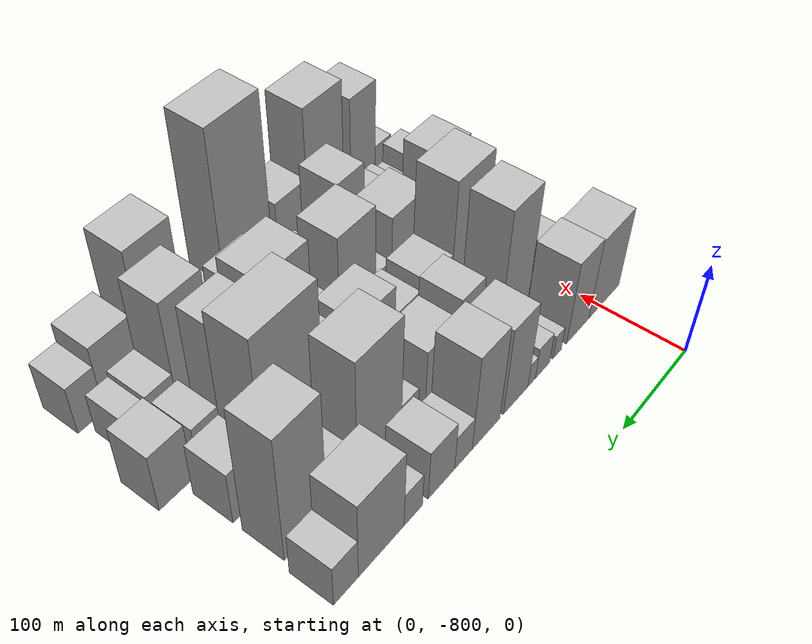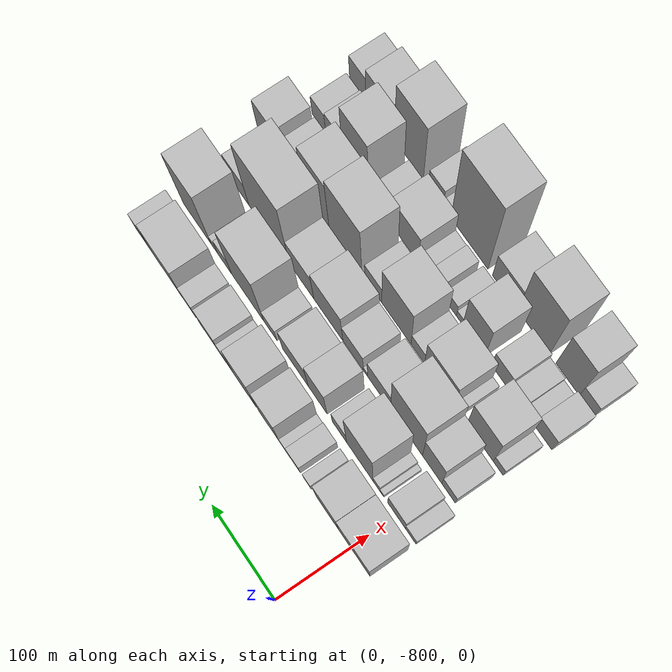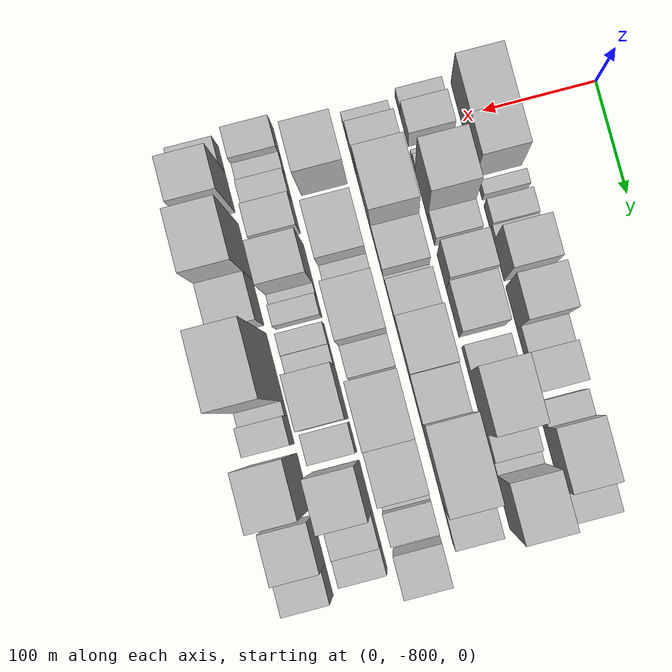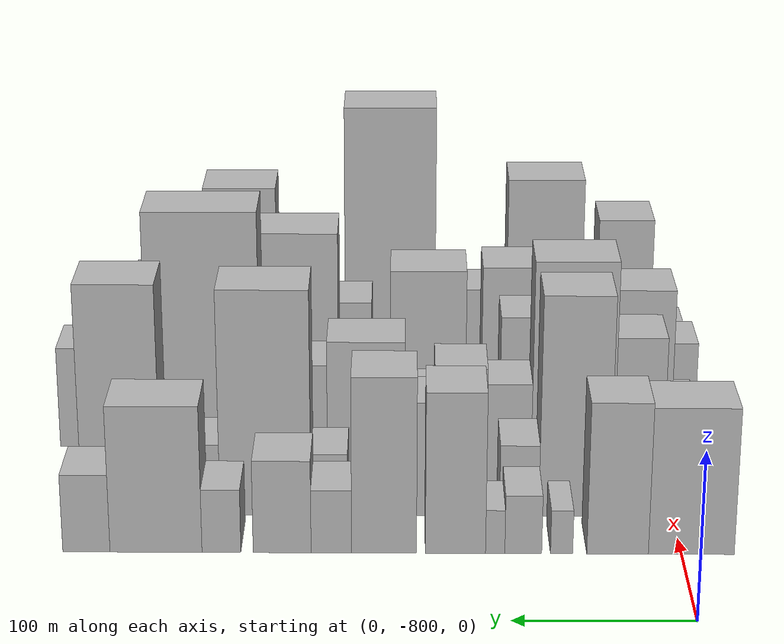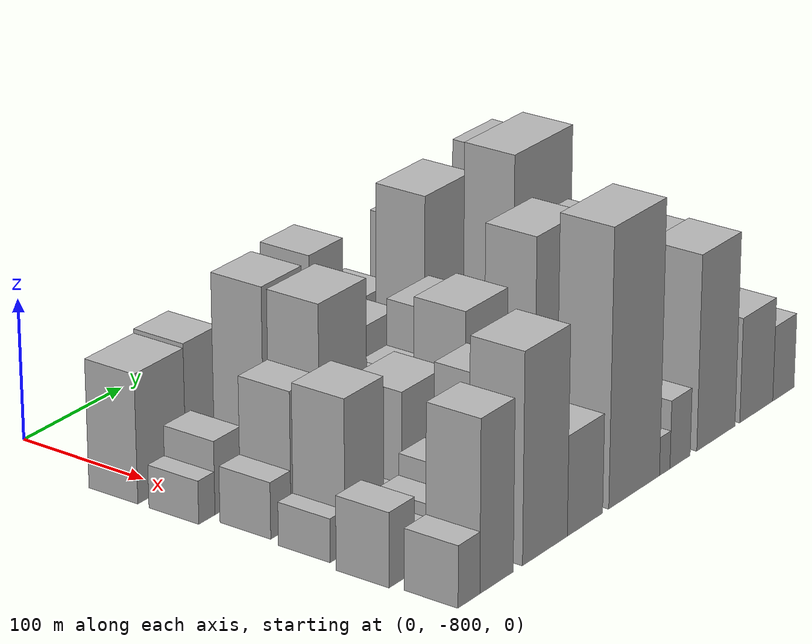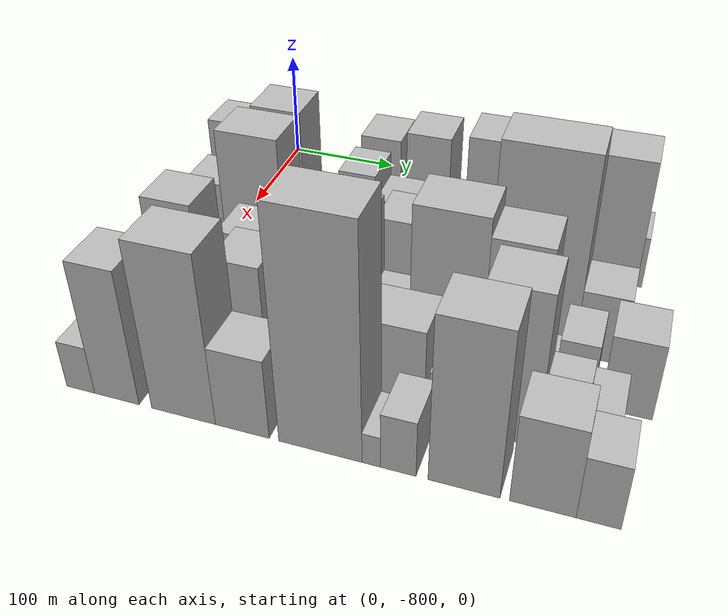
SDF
<sdf version="1.6">
 <world name="default">
  <model name="building_1">
   <static>1</static>
   <pose>100.0000 -805.6093 0 0.000000 0.000000 0.000000</pose>
   <link name="link">
    <pose>0 0 45.00 0 0 0</pose>
    <collision name="collision"><geometry><box><size>40.0000 48.7813 90.0000</size></box></geometry></collision>
    <visual name="visual">
     <cast_shadows>0</cast_shadows>
     <geometry><box><size>40.0000 48.7813 90.0000</size></box></geometry>
     <material>
      <script>
       <uri>model://HANNAS_wall/materials/scripts</uri>
       <uri>model://HANNAS_wall/materials/textures</uri>
       <name>vrc/HANNAS_wall</name>
      </script>
     </material>
    </visual>
   </link>
  </model>
  <model name="building_2">
   <static>1</static>
   <pose>100.0000 -763.7412 0 0.000000 0.000000 0.000000</pose>
   <link name="link">
    <pose>0 0 46.50 0 0 0</pose>
    <collision name="collision"><geometry><box><size>40.0000 34.9550 93.0000</size></box></geometry></collision>
    <visual name="visual">
     <cast_shadows>0</cast_shadows>
     <geometry><box><size>40.0000 34.9550 93.0000</size></box></geometry>
     <material>
      <script>
       <uri>model://HANNAS_wall/materials/scripts</uri>
       <uri>model://HANNAS_wall/materials/textures</uri>
       <name>vrc/HANNAS_wall</name>
      </script>
     </material>
    </visual>
   </link>
  </model>
  <model name="building_3">
   <static>1</static>
   <pose>100.0000 -731.9594 0 0.000000 0.000000 0.000000</pose>
   <link name="link">
    <pose>0 0 13.50 0 0 0</pose>
    <collision name="collision"><geometry><box><size>40.0000 12.6085 27.0000</size></box></geometry></collision>
    <visual name="visual">
     <cast_shadows>0</cast_shadows>
     <geometry><box><size>40.0000 12.6085 27.0000</size></box></geometry>
     <material>
      <script>
       <uri>model://HANNAS_wall/materials/scripts</uri>
       <uri>model://HANNAS_wall/materials/textures</uri>
       <name>vrc/HANNAS_wall</name>
      </script>
     </material>
    </visual>
   </link>
  </model>
  <model name="building_4">
   <static>1</static>
   <pose>100.0000 -710.1623 0 0.000000 0.000000 0.000000</pose>
   <link name="link">
    <pose>0 0 18.00 0 0 0</pose>
    <collision name="collision"><geometry><box><size>40.0000 20.9856 36.0000</size></box></geometry></collision>
    <visual name="visual">
     <cast_shadows>0</cast_shadows>
     <geometry><box><size>40.0000 20.9856 36.0000</size></box></geometry>
     <material>
      <script>
       <uri>model://HANNAS_wall/materials/scripts</uri>
       <uri>model://HANNAS_wall/materials/textures</uri>
       <name>vrc/HANNAS_wall</name>
      </script>
     </material>
    </visual>
   </link>
  </model>
  <model name="building_5">
   <static>1</static>
   <pose>100.0000 -694.1890 0 0.000000 0.000000 0.000000</pose>
   <link name="link">
    <pose>0 0 13.50 0 0 0</pose>
    <collision name="collision"><geometry><box><size>40.0000 10.9612 27.0000</size></box></geometry></collision>
    <visual name="visual">
     <cast_shadows>0</cast_shadows>
     <geometry><box><size>40.0000 10.9612 27.0000</size></box></geometry>
     <material>
      <script>
       <uri>model://HANNAS_wall/materials/scripts</uri>
       <uri>model://HANNAS_wall/materials/textures</uri>
       <name>vrc/HANNAS_wall</name>
      </script>
     </material>
    </visual>
   </link>
  </model>
  <model name="building_6">
   <static>1</static>
   <pose>100.0000 -671.6011 0 0.000000 0.000000 0.000000</pose>
   <link name="link">
    <pose>0 0 49.50 0 0 0</pose>
    <collision name="collision"><geometry><box><size>40.0000 34.2147 99.0000</size></box></geometry></collision>
    <visual name="visual">
     <cast_shadows>0</cast_shadows>
     <geometry><box><size>40.0000 34.2147 99.0000</size></box></geometry>
     <material>
      <script>
       <uri>model://HANNAS_wall/materials/scripts</uri>
       <uri>model://HANNAS_wall/materials/textures</uri>
       <name>vrc/HANNAS_wall</name>
      </script>
     </material>
    </visual>
   </link>
  </model>
  <model name="building_7">
   <static>1</static>
   <pose>100.0000 -631.0095 0 0.000000 0.000000 0.000000</pose>
   <link name="link">
    <pose>0 0 54.00 0 0 0</pose>
    <collision name="collision"><geometry><box><size>40.0000 36.9685 108.0000</size></box></geometry></collision>
    <visual name="visual">
     <cast_shadows>0</cast_shadows>
     <geometry><box><size>40.0000 36.9685 108.0000</size></box></geometry>
     <material>
      <script>
       <uri>model://HANNAS_wall/materials/scripts</uri>
       <uri>model://HANNAS_wall/materials/textures</uri>
       <name>vrc/HANNAS_wall</name>
      </script>
     </material>
    </visual>
   </link>
  </model>
  <model name="building_8">
   <static>1</static>
   <pose>100.0000 -601.0338 0 0.000000 0.000000 0.000000</pose>
   <link name="link">
    <pose>0 0 19.50 0 0 0</pose>
    <collision name="collision"><geometry><box><size>40.0000 22.9829 39.0000</size></box></geometry></collision>
    <visual name="visual">
     <cast_shadows>0</cast_shadows>
     <geometry><box><size>40.0000 22.9829 39.0000</size></box></geometry>
     <material>
      <script>
       <uri>model://HANNAS_wall/materials/scripts</uri>
       <uri>model://HANNAS_wall/materials/textures</uri>
       <name>vrc/HANNAS_wall</name>
      </script>
     </material>
    </visual>
   </link>
  </model>
  <model name="building_9">
   <static>1</static>
   <pose>100.0000 -573.0449 0 0.000000 0.000000 0.000000</pose>
   <link name="link">
    <pose>0 0 28.50 0 0 0</pose>
    <collision name="collision"><geometry><box><size>40.0000 32.9949 57.0000</size></box></geometry></collision>
    <visual name="visual">
     <cast_shadows>0</cast_shadows>
     <geometry><box><size>40.0000 32.9949 57.0000</size></box></geometry>
     <material>
      <script>
       <uri>model://HANNAS_wall/materials/scripts</uri>
       <uri>model://HANNAS_wall/materials/textures</uri>
       <name>vrc/HANNAS_wall</name>
      </script>
     </material>
    </visual>
   </link>
  </model>
  <model name="building_10">
   <static>1</static>
   <pose>100.0000 -538.4916 0 0.000000 0.000000 0.000000</pose>
   <link name="link">
    <pose>0 0 19.50 0 0 0</pose>
    <collision name="collision"><geometry><box><size>40.0000 22.1117 39.0000</size></box></geometry></collision>
    <visual name="visual">
     <cast_shadows>0</cast_shadows>
     <geometry><box><size>40.0000 22.1117 39.0000</size></box></geometry>
     <material>
      <script>
       <uri>model://HANNAS_wall/materials/scripts</uri>
       <uri>model://HANNAS_wall/materials/textures</uri>
       <name>vrc/HANNAS_wall</name>
      </script>
     </material>
    </visual>
   </link>
  </model>
  <model name="building_11">
   <static>1</static>
   <pose>100.0000 -501.2214 0 0.000000 0.000000 0.000000</pose>
   <link name="link">
    <pose>0 0 45.00 0 0 0</pose>
    <collision name="collision"><geometry><box><size>40.0000 52.4288 90.0000</size></box></geometry></collision>
    <visual name="visual">
     <cast_shadows>0</cast_shadows>
     <geometry><box><size>40.0000 52.4288 90.0000</size></box></geometry>
     <material>
      <script>
       <uri>model://HANNAS_wall/materials/scripts</uri>
       <uri>model://HANNAS_wall/materials/textures</uri>
       <name>vrc/HANNAS_wall</name>
      </script>
     </material>
    </visual>
   </link>
  </model>
  <model name="building_12">
   <static>1</static>
   <pose>100.0000 -461.5591 0 0.000000 0.000000 0.000000</pose>
   <link name="link">
    <pose>0 0 24.00 0 0 0</pose>
    <collision name="collision"><geometry><box><size>40.0000 26.8958 48.0000</size></box></geometry></collision>
    <visual name="visual">
     <cast_shadows>0</cast_shadows>
     <geometry><box><size>40.0000 26.8958 48.0000</size></box></geometry>
     <material>
      <script>
       <uri>model://HANNAS_wall/materials/scripts</uri>
       <uri>model://HANNAS_wall/materials/textures</uri>
       <name>vrc/HANNAS_wall</name>
      </script>
     </material>
    </visual>
   </link>
  </model>
  <model name="building_49">
   <static>1</static>
   <pose>149.0000 -821.7969 0 0.000000 0.000000 0.000000</pose>
   <link name="link">
    <pose>0 0 15.00 0 0 0</pose>
    <collision name="collision"><geometry><box><size>40.0000 16.4061 30.0000</size></box></geometry></collision>
    <visual name="visual">
     <cast_shadows>0</cast_shadows>
     <geometry><box><size>40.0000 16.4061 30.0000</size></box></geometry>
     <material>
      <script>
       <uri>model://HANNAS_wall/materials/scripts</uri>
       <uri>model://HANNAS_wall/materials/textures</uri>
       <name>vrc/HANNAS_wall</name>
      </script>
     </material>
    </visual>
   </link>
  </model>
  <model name="building_50">
   <static>1</static>
   <pose>149.0000 -799.8509 0 0.000000 0.000000 0.000000</pose>
   <link name="link">
    <pose>0 0 25.50 0 0 0</pose>
    <collision name="collision"><geometry><box><size>40.0000 27.4859 51.0000</size></box></geometry></collision>
    <visual name="visual">
     <cast_shadows>0</cast_shadows>
     <geometry><box><size>40.0000 27.4859 51.0000</size></box></geometry>
     <material>
      <script>
       <uri>model://HANNAS_wall/materials/scripts</uri>
       <uri>model://HANNAS_wall/materials/textures</uri>
       <name>vrc/HANNAS_wall</name>
      </script>
     </material>
    </visual>
   </link>
  </model>
  <model name="building_51">
   <static>1</static>
   <pose>149.0000 -776.9846 0 0.000000 0.000000 0.000000</pose>
   <link name="link">
    <pose>0 0 7.50 0 0 0</pose>
    <collision name="collision"><geometry><box><size>40.0000 6.2467 15.0000</size></box></geometry></collision>
    <visual name="visual">
     <cast_shadows>0</cast_shadows>
     <geometry><box><size>40.0000 6.2467 15.0000</size></box></geometry>
     <material>
      <script>
       <uri>model://HANNAS_wall/materials/scripts</uri>
       <uri>model://HANNAS_wall/materials/textures</uri>
       <name>vrc/HANNAS_wall</name>
      </script>
     </material>
    </visual>
   </link>
  </model>
  <model name="building_52">
   <static>1</static>
   <pose>149.0000 -768.4472 0 0.000000 0.000000 0.000000</pose>
   <link name="link">
    <pose>0 0 13.50 0 0 0</pose>
    <collision name="collision"><geometry><box><size>40.0000 10.8280 27.0000</size></box></geometry></collision>
    <visual name="visual">
     <cast_shadows>0</cast_shadows>
     <geometry><box><size>40.0000 10.8280 27.0000</size></box></geometry>
     <material>
      <script>
       <uri>model://HANNAS_wall/materials/scripts</uri>
       <uri>model://HANNAS_wall/materials/textures</uri>
       <name>vrc/HANNAS_wall</name>
      </script>
     </material>
    </visual>
   </link>
  </model>
  <model name="building_53">
   <static>1</static>
   <pose>149.0000 -742.2719 0 0.000000 0.000000 0.000000</pose>
   <link name="link">
    <pose>0 0 69.00 0 0 0</pose>
    <collision name="collision"><geometry><box><size>40.0000 41.5226 138.0000</size></box></geometry></collision>
    <visual name="visual">
     <cast_shadows>0</cast_shadows>
     <geometry><box><size>40.0000 41.5226 138.0000</size></box></geometry>
     <material>
      <script>
       <uri>model://HANNAS_wall/materials/scripts</uri>
       <uri>model://HANNAS_wall/materials/textures</uri>
       <name>vrc/HANNAS_wall</name>
      </script>
     </material>
    </visual>
   </link>
  </model>
  <model name="building_54">
   <static>1</static>
   <pose>149.0000 -709.9902 0 0.000000 0.000000 0.000000</pose>
   <link name="link">
    <pose>0 0 22.50 0 0 0</pose>
    <collision name="collision"><geometry><box><size>40.0000 23.0407 45.0000</size></box></geometry></collision>
    <visual name="visual">
     <cast_shadows>0</cast_shadows>
     <geometry><box><size>40.0000 23.0407 45.0000</size></box></geometry>
     <material>
      <script>
       <uri>model://HANNAS_wall/materials/scripts</uri>
       <uri>model://HANNAS_wall/materials/textures</uri>
       <name>vrc/HANNAS_wall</name>
      </script>
     </material>
    </visual>
   </link>
  </model>
  <model name="building_55">
   <static>1</static>
   <pose>149.0000 -675.2562 0 0.000000 0.000000 0.000000</pose>
   <link name="link">
    <pose>0 0 46.50 0 0 0</pose>
    <collision name="collision"><geometry><box><size>40.0000 30.4271 93.0000</size></box></geometry></collision>
    <visual name="visual">
     <cast_shadows>0</cast_shadows>
     <geometry><box><size>40.0000 30.4271 93.0000</size></box></geometry>
     <material>
      <script>
       <uri>model://HANNAS_wall/materials/scripts</uri>
       <uri>model://HANNAS_wall/materials/textures</uri>
       <name>vrc/HANNAS_wall</name>
      </script>
     </material>
    </visual>
   </link>
  </model>
  <model name="building_56">
   <static>1</static>
   <pose>149.0000 -639.1343 0 0.000000 0.000000 0.000000</pose>
   <link name="link">
    <pose>0 0 36.00 0 0 0</pose>
    <collision name="collision"><geometry><box><size>40.0000 41.8168 72.0000</size></box></geometry></collision>
    <visual name="visual">
     <cast_shadows>0</cast_shadows>
     <geometry><box><size>40.0000 41.8168 72.0000</size></box></geometry>
     <material>
      <script>
       <uri>model://HANNAS_wall/materials/scripts</uri>
       <uri>model://HANNAS_wall/materials/textures</uri>
       <name>vrc/HANNAS_wall</name>
      </script>
     </material>
    </visual>
   </link>
  </model>
  <model name="building_57">
   <static>1</static>
   <pose>149.0000 -598.4650 0 0.000000 0.000000 0.000000</pose>
   <link name="link">
    <pose>0 0 19.50 0 0 0</pose>
    <collision name="collision"><geometry><box><size>40.0000 21.5218 39.0000</size></box></geometry></collision>
    <visual name="visual">
     <cast_shadows>0</cast_shadows>
     <geometry><box><size>40.0000 21.5218 39.0000</size></box></geometry>
     <material>
      <script>
       <uri>model://HANNAS_wall/materials/scripts</uri>
       <uri>model://HANNAS_wall/materials/textures</uri>
       <name>vrc/HANNAS_wall</name>
      </script>
     </material>
    </visual>
   </link>
  </model>
  <model name="building_58">
   <static>1</static>
   <pose>149.0000 -560.9522 0 0.000000 0.000000 0.000000</pose>
   <link name="link">
    <pose>0 0 70.50 0 0 0</pose>
    <collision name="collision"><geometry><box><size>40.0000 53.5037 141.0000</size></box></geometry></collision>
    <visual name="visual">
     <cast_shadows>0</cast_shadows>
     <geometry><box><size>40.0000 53.5037 141.0000</size></box></geometry>
     <material>
      <script>
       <uri>model://HANNAS_wall/materials/scripts</uri>
       <uri>model://HANNAS_wall/materials/textures</uri>
       <name>vrc/HANNAS_wall</name>
      </script>
     </material>
    </visual>
   </link>
  </model>
  <model name="building_59">
   <static>1</static>
   <pose>149.0000 -522.5484 0 0.000000 0.000000 0.000000</pose>
   <link name="link">
    <pose>0 0 22.50 0 0 0</pose>
    <collision name="collision"><geometry><box><size>40.0000 23.3039 45.0000</size></box></geometry></collision>
    <visual name="visual">
     <cast_shadows>0</cast_shadows>
     <geometry><box><size>40.0000 23.3039 45.0000</size></box></geometry>
     <material>
      <script>
       <uri>model://HANNAS_wall/materials/scripts</uri>
       <uri>model://HANNAS_wall/materials/textures</uri>
       <name>vrc/HANNAS_wall</name>
      </script>
     </material>
    </visual>
   </link>
  </model>
  <model name="building_60">
   <static>1</static>
   <pose>149.0000 -505.3065 0 0.000000 0.000000 0.000000</pose>
   <link name="link">
    <pose>0 0 13.50 0 0 0</pose>
    <collision name="collision"><geometry><box><size>40.0000 11.1798 27.0000</size></box></geometry></collision>
    <visual name="visual">
     <cast_shadows>0</cast_shadows>
     <geometry><box><size>40.0000 11.1798 27.0000</size></box></geometry>
     <material>
      <script>
       <uri>model://HANNAS_wall/materials/scripts</uri>
       <uri>model://HANNAS_wall/materials/textures</uri>
       <name>vrc/HANNAS_wall</name>
      </script>
     </material>
    </visual>
   </link>
  </model>
  <model name="building_61">
   <static>1</static>
   <pose>149.0000 -476.3643 0 0.000000 0.000000 0.000000</pose>
   <link name="link">
    <pose>0 0 72.00 0 0 0</pose>
    <collision name="collision"><geometry><box><size>40.0000 46.7046 144.0000</size></box></geometry></collision>
    <visual name="visual">
     <cast_shadows>0</cast_shadows>
     <geometry><box><size>40.0000 46.7046 144.0000</size></box></geometry>
     <material>
      <script>
       <uri>model://HANNAS_wall/materials/scripts</uri>
       <uri>model://HANNAS_wall/materials/textures</uri>
       <name>vrc/HANNAS_wall</name>
      </script>
     </material>
    </visual>
   </link>
  </model>
  <model name="building_98">
   <static>1</static>
   <pose>198.0000 -809.5957 0 0.000000 0.000000 0.000000</pose>
   <link name="link">
    <pose>0 0 19.50 0 0 0</pose>
    <collision name="collision"><geometry><box><size>40.0000 20.8086 39.0000</size></box></geometry></collision>
    <visual name="visual">
     <cast_shadows>0</cast_shadows>
     <geometry><box><size>40.0000 20.8086 39.0000</size></box></geometry>
     <material>
      <script>
       <uri>model://HANNAS_wall/materials/scripts</uri>
       <uri>model://HANNAS_wall/materials/textures</uri>
       <name>vrc/HANNAS_wall</name>
      </script>
     </material>
    </visual>
   </link>
  </model>
  <model name="building_99">
   <static>1</static>
   <pose>198.0000 -784.1689 0 0.000000 0.000000 0.000000</pose>
   <link name="link">
    <pose>0 0 46.50 0 0 0</pose>
    <collision name="collision"><geometry><box><size>40.0000 30.0450 93.0000</size></box></geometry></collision>
    <visual name="visual">
     <cast_shadows>0</cast_shadows>
     <geometry><box><size>40.0000 30.0450 93.0000</size></box></geometry>
     <material>
      <script>
       <uri>model://HANNAS_wall/materials/scripts</uri>
       <uri>model://HANNAS_wall/materials/textures</uri>
       <name>vrc/HANNAS_wall</name>
      </script>
     </material>
    </visual>
   </link>
  </model>
  <model name="building_100">
   <static>1</static>
   <pose>198.0000 -744.1848 0 0.000000 0.000000 0.000000</pose>
   <link name="link">
    <pose>0 0 70.50 0 0 0</pose>
    <collision name="collision"><geometry><box><size>40.0000 49.9233 141.0000</size></box></geometry></collision>
    <visual name="visual">
     <cast_shadows>0</cast_shadows>
     <geometry><box><size>40.0000 49.9233 141.0000</size></box></geometry>
     <material>
      <script>
       <uri>model://HANNAS_wall/materials/scripts</uri>
       <uri>model://HANNAS_wall/materials/textures</uri>
       <name>vrc/HANNAS_wall</name>
      </script>
     </material>
    </visual>
   </link>
  </model>
  <model name="building_101">
   <static>1</static>
   <pose>198.0000 -700.9851 0 0.000000 0.000000 0.000000</pose>
   <link name="link">
    <pose>0 0 31.50 0 0 0</pose>
    <collision name="collision"><geometry><box><size>40.0000 36.4761 63.0000</size></box></geometry></collision>
    <visual name="visual">
     <cast_shadows>0</cast_shadows>
     <geometry><box><size>40.0000 36.4761 63.0000</size></box></geometry>
     <material>
      <script>
       <uri>model://HANNAS_wall/materials/scripts</uri>
       <uri>model://HANNAS_wall/materials/textures</uri>
       <name>vrc/HANNAS_wall</name>
      </script>
     </material>
    </visual>
   </link>
  </model>
  <model name="building_102">
   <static>1</static>
   <pose>198.0000 -679.3161 0 0.000000 0.000000 0.000000</pose>
   <link name="link">
    <pose>0 0 7.50 0 0 0</pose>
    <collision name="collision"><geometry><box><size>40.0000 6.8618 15.0000</size></box></geometry></collision>
    <visual name="visual">
     <cast_shadows>0</cast_shadows>
     <geometry><box><size>40.0000 6.8618 15.0000</size></box></geometry>
     <material>
      <script>
       <uri>model://HANNAS_wall/materials/scripts</uri>
       <uri>model://HANNAS_wall/materials/textures</uri>
       <name>vrc/HANNAS_wall</name>
      </script>
     </material>
    </visual>
   </link>
  </model>
  <model name="building_103">
   <static>1</static>
   <pose>198.0000 -659.4198 0 0.000000 0.000000 0.000000</pose>
   <link name="link">
    <pose>0 0 28.50 0 0 0</pose>
    <collision name="collision"><geometry><box><size>40.0000 32.9308 57.0000</size></box></geometry></collision>
    <visual name="visual">
     <cast_shadows>0</cast_shadows>
     <geometry><box><size>40.0000 32.9308 57.0000</size></box></geometry>
     <material>
      <script>
       <uri>model://HANNAS_wall/materials/scripts</uri>
       <uri>model://HANNAS_wall/materials/textures</uri>
       <name>vrc/HANNAS_wall</name>
      </script>
     </material>
    </visual>
   </link>
  </model>
  <model name="building_104">
   <static>1</static>
   <pose>198.0000 -619.4637 0 0.000000 0.000000 0.000000</pose>
   <link name="link">
    <pose>0 0 45.00 0 0 0</pose>
    <collision name="collision"><geometry><box><size>40.0000 46.9815 90.0000</size></box></geometry></collision>
    <visual name="visual">
     <cast_shadows>0</cast_shadows>
     <geometry><box><size>40.0000 46.9815 90.0000</size></box></geometry>
     <material>
      <script>
       <uri>model://HANNAS_wall/materials/scripts</uri>
       <uri>model://HANNAS_wall/materials/textures</uri>
       <name>vrc/HANNAS_wall</name>
      </script>
     </material>
    </visual>
   </link>
  </model>
  <model name="building_105">
   <static>1</static>
   <pose>198.0000 -575.8763 0 0.000000 0.000000 0.000000</pose>
   <link name="link">
    <pose>0 0 37.50 0 0 0</pose>
    <collision name="collision"><geometry><box><size>40.0000 40.1931 75.0000</size></box></geometry></collision>
    <visual name="visual">
     <cast_shadows>0</cast_shadows>
     <geometry><box><size>40.0000 40.1931 75.0000</size></box></geometry>
     <material>
      <script>
       <uri>model://HANNAS_wall/materials/scripts</uri>
       <uri>model://HANNAS_wall/materials/textures</uri>
       <name>vrc/HANNAS_wall</name>
      </script>
     </material>
    </visual>
   </link>
  </model>
  <model name="building_106">
   <static>1</static>
   <pose>198.0000 -521.8946 0 0.000000 0.000000 0.000000</pose>
   <link name="link">
    <pose>0 0 85.50 0 0 0</pose>
    <collision name="collision"><geometry><box><size>40.0000 67.7703 171.0000</size></box></geometry></collision>
    <visual name="visual">
     <cast_shadows>0</cast_shadows>
     <geometry><box><size>40.0000 67.7703 171.0000</size></box></geometry>
     <material>
      <script>
       <uri>model://HANNAS_wall/materials/scripts</uri>
       <uri>model://HANNAS_wall/materials/textures</uri>
       <name>vrc/HANNAS_wall</name>
      </script>
     </material>
    </visual>
   </link>
  </model>
  <model name="building_107">
   <static>1</static>
   <pose>198.0000 -470.4962 0 0.000000 0.000000 0.000000</pose>
   <link name="link">
    <pose>0 0 30.00 0 0 0</pose>
    <collision name="collision"><geometry><box><size>40.0000 35.0267 60.0000</size></box></geometry></collision>
    <visual name="visual">
     <cast_shadows>0</cast_shadows>
     <geometry><box><size>40.0000 35.0267 60.0000</size></box></geometry>
     <material>
      <script>
       <uri>model://HANNAS_wall/materials/scripts</uri>
       <uri>model://HANNAS_wall/materials/textures</uri>
       <name>vrc/HANNAS_wall</name>
      </script>
     </material>
    </visual>
   </link>
  </model>
  <model name="building_143">
   <static>1</static>
   <pose>247.0000 -816.3912 0 0.000000 0.000000 0.000000</pose>
   <link name="link">
    <pose>0 0 15.00 0 0 0</pose>
    <collision name="collision"><geometry><box><size>40.0000 15.2175 30.0000</size></box></geometry></collision>
    <visual name="visual">
     <cast_shadows>0</cast_shadows>
     <geometry><box><size>40.0000 15.2175 30.0000</size></box></geometry>
     <material>
      <script>
       <uri>model://HANNAS_wall/materials/scripts</uri>
       <uri>model://HANNAS_wall/materials/textures</uri>
       <name>vrc/HANNAS_wall</name>
      </script>
     </material>
    </visual>
   </link>
  </model>
  <model name="building_144">
   <static>1</static>
   <pose>247.0000 -788.5164 0 0.000000 0.000000 0.000000</pose>
   <link name="link">
    <pose>0 0 52.50 0 0 0</pose>
    <collision name="collision"><geometry><box><size>40.0000 40.5322 105.0000</size></box></geometry></collision>
    <visual name="visual">
     <cast_shadows>0</cast_shadows>
     <geometry><box><size>40.0000 40.5322 105.0000</size></box></geometry>
     <material>
      <script>
       <uri>model://HANNAS_wall/materials/scripts</uri>
       <uri>model://HANNAS_wall/materials/textures</uri>
       <name>vrc/HANNAS_wall</name>
      </script>
     </material>
    </visual>
   </link>
  </model>
  <model name="building_145">
   <static>1</static>
   <pose>247.0000 -754.1603 0 0.000000 0.000000 0.000000</pose>
   <link name="link">
    <pose>0 0 12.00 0 0 0</pose>
    <collision name="collision"><geometry><box><size>40.0000 10.1801 24.0000</size></box></geometry></collision>
    <visual name="visual">
     <cast_shadows>0</cast_shadows>
     <geometry><box><size>40.0000 10.1801 24.0000</size></box></geometry>
     <material>
      <script>
       <uri>model://HANNAS_wall/materials/scripts</uri>
       <uri>model://HANNAS_wall/materials/textures</uri>
       <name>vrc/HANNAS_wall</name>
      </script>
     </material>
    </visual>
   </link>
  </model>
  <model name="building_146">
   <static>1</static>
   <pose>247.0000 -725.5037 0 0.000000 0.000000 0.000000</pose>
   <link name="link">
    <pose>0 0 43.50 0 0 0</pose>
    <collision name="collision"><geometry><box><size>40.0000 47.1330 87.0000</size></box></geometry></collision>
    <visual name="visual">
     <cast_shadows>0</cast_shadows>
     <geometry><box><size>40.0000 47.1330 87.0000</size></box></geometry>
     <material>
      <script>
       <uri>model://HANNAS_wall/materials/scripts</uri>
       <uri>model://HANNAS_wall/materials/textures</uri>
       <name>vrc/HANNAS_wall</name>
      </script>
     </material>
    </visual>
   </link>
  </model>
  <model name="building_147">
   <static>1</static>
   <pose>247.0000 -691.1942 0 0.000000 0.000000 0.000000</pose>
   <link name="link">
    <pose>0 0 19.50 0 0 0</pose>
    <collision name="collision"><geometry><box><size>40.0000 21.4859 39.0000</size></box></geometry></collision>
    <visual name="visual">
     <cast_shadows>0</cast_shadows>
     <geometry><box><size>40.0000 21.4859 39.0000</size></box></geometry>
     <material>
      <script>
       <uri>model://HANNAS_wall/materials/scripts</uri>
       <uri>model://HANNAS_wall/materials/textures</uri>
       <name>vrc/HANNAS_wall</name>
      </script>
     </material>
    </visual>
   </link>
  </model>
  <model name="building_148">
   <static>1</static>
   <pose>247.0000 -657.1071 0 0.000000 0.000000 0.000000</pose>
   <link name="link">
    <pose>0 0 58.50 0 0 0</pose>
    <collision name="collision"><geometry><box><size>40.0000 46.6883 117.0000</size></box></geometry></collision>
    <visual name="visual">
     <cast_shadows>0</cast_shadows>
     <geometry><box><size>40.0000 46.6883 117.0000</size></box></geometry>
     <material>
      <script>
       <uri>model://HANNAS_wall/materials/scripts</uri>
       <uri>model://HANNAS_wall/materials/textures</uri>
       <name>vrc/HANNAS_wall</name>
      </script>
     </material>
    </visual>
   </link>
  </model>
  <model name="building_149">
   <static>1</static>
   <pose>247.0000 -620.1806 0 0.000000 0.000000 0.000000</pose>
   <link name="link">
    <pose>0 0 25.50 0 0 0</pose>
    <collision name="collision"><geometry><box><size>40.0000 27.1647 51.0000</size></box></geometry></collision>
    <visual name="visual">
     <cast_shadows>0</cast_shadows>
     <geometry><box><size>40.0000 27.1647 51.0000</size></box></geometry>
     <material>
      <script>
       <uri>model://HANNAS_wall/materials/scripts</uri>
       <uri>model://HANNAS_wall/materials/textures</uri>
       <name>vrc/HANNAS_wall</name>
      </script>
     </material>
    </visual>
   </link>
  </model>
  <model name="building_150">
   <static>1</static>
   <pose>247.0000 -574.8576 0 0.000000 0.000000 0.000000</pose>
   <link name="link">
    <pose>0 0 70.50 0 0 0</pose>
    <collision name="collision"><geometry><box><size>40.0000 53.4812 141.0000</size></box></geometry></collision>
    <visual name="visual">
     <cast_shadows>0</cast_shadows>
     <geometry><box><size>40.0000 53.4812 141.0000</size></box></geometry>
     <material>
      <script>
       <uri>model://HANNAS_wall/materials/scripts</uri>
       <uri>model://HANNAS_wall/materials/textures</uri>
       <name>vrc/HANNAS_wall</name>
      </script>
     </material>
    </visual>
   </link>
  </model>
  <model name="building_151">
   <static>1</static>
   <pose>247.0000 -526.8293 0 0.000000 0.000000 0.000000</pose>
   <link name="link">
    <pose>0 0 63.00 0 0 0</pose>
    <collision name="collision"><geometry><box><size>40.0000 42.5754 126.0000</size></box></geometry></collision>
    <visual name="visual">
     <cast_shadows>0</cast_shadows>
     <geometry><box><size>40.0000 42.5754 126.0000</size></box></geometry>
     <material>
      <script>
       <uri>model://HANNAS_wall/materials/scripts</uri>
       <uri>model://HANNAS_wall/materials/textures</uri>
       <name>vrc/HANNAS_wall</name>
      </script>
     </material>
    </visual>
   </link>
  </model>
  <model name="building_152">
   <static>1</static>
   <pose>247.0000 -500.5195 0 0.000000 0.000000 0.000000</pose>
   <link name="link">
    <pose>0 0 12.00 0 0 0</pose>
    <collision name="collision"><geometry><box><size>40.0000 10.0443 24.0000</size></box></geometry></collision>
    <visual name="visual">
     <cast_shadows>0</cast_shadows>
     <geometry><box><size>40.0000 10.0443 24.0000</size></box></geometry>
     <material>
      <script>
       <uri>model://HANNAS_wall/materials/scripts</uri>
       <uri>model://HANNAS_wall/materials/textures</uri>
       <name>vrc/HANNAS_wall</name>
      </script>
     </material>
    </visual>
   </link>
  </model>
  <model name="building_153">
   <static>1</static>
   <pose>247.0000 -481.9475 0 0.000000 0.000000 0.000000</pose>
   <link name="link">
    <pose>0 0 27.00 0 0 0</pose>
    <collision name="collision"><geometry><box><size>40.0000 27.0998 54.0000</size></box></geometry></collision>
    <visual name="visual">
     <cast_shadows>0</cast_shadows>
     <geometry><box><size>40.0000 27.0998 54.0000</size></box></geometry>
     <material>
      <script>
       <uri>model://HANNAS_wall/materials/scripts</uri>
       <uri>model://HANNAS_wall/materials/textures</uri>
       <name>vrc/HANNAS_wall</name>
      </script>
     </material>
    </visual>
   </link>
  </model>
  <model name="building_154">
   <static>1</static>
   <pose>247.0000 -444.7229 0 0.000000 0.000000 0.000000</pose>
   <link name="link">
    <pose>0 0 33.00 0 0 0</pose>
    <collision name="collision"><geometry><box><size>40.0000 35.3494 66.0000</size></box></geometry></collision>
    <visual name="visual">
     <cast_shadows>0</cast_shadows>
     <geometry><box><size>40.0000 35.3494 66.0000</size></box></geometry>
     <material>
      <script>
       <uri>model://HANNAS_wall/materials/scripts</uri>
       <uri>model://HANNAS_wall/materials/textures</uri>
       <name>vrc/HANNAS_wall</name>
      </script>
     </material>
    </visual>
   </link>
  </model>
  <model name="building_188">
   <static>1</static>
   <pose>296.0000 -816.7907 0 0.000000 0.000000 0.000000</pose>
   <link name="link">
    <pose>0 0 25.50 0 0 0</pose>
    <collision name="collision"><geometry><box><size>40.0000 26.4186 51.0000</size></box></geometry></collision>
    <visual name="visual">
     <cast_shadows>0</cast_shadows>
     <geometry><box><size>40.0000 26.4186 51.0000</size></box></geometry>
     <material>
      <script>
       <uri>model://HANNAS_wall/materials/scripts</uri>
       <uri>model://HANNAS_wall/materials/textures</uri>
       <name>vrc/HANNAS_wall</name>
      </script>
     </material>
    </visual>
   </link>
  </model>
  <model name="building_189">
   <static>1</static>
   <pose>296.0000 -795.5726 0 0.000000 0.000000 0.000000</pose>
   <link name="link">
    <pose>0 0 15.00 0 0 0</pose>
    <collision name="collision"><geometry><box><size>40.0000 16.0176 30.0000</size></box></geometry></collision>
    <visual name="visual">
     <cast_shadows>0</cast_shadows>
     <geometry><box><size>40.0000 16.0176 30.0000</size></box></geometry>
     <material>
      <script>
       <uri>model://HANNAS_wall/materials/scripts</uri>
       <uri>model://HANNAS_wall/materials/textures</uri>
       <name>vrc/HANNAS_wall</name>
      </script>
     </material>
    </visual>
   </link>
  </model>
  <model name="building_190">
   <static>1</static>
   <pose>296.0000 -776.2582 0 0.000000 0.000000 0.000000</pose>
   <link name="link">
    <pose>0 0 19.50 0 0 0</pose>
    <collision name="collision"><geometry><box><size>40.0000 22.6111 39.0000</size></box></geometry></collision>
    <visual name="visual">
     <cast_shadows>0</cast_shadows>
     <geometry><box><size>40.0000 22.6111 39.0000</size></box></geometry>
     <material>
      <script>
       <uri>model://HANNAS_wall/materials/scripts</uri>
       <uri>model://HANNAS_wall/materials/textures</uri>
       <name>vrc/HANNAS_wall</name>
      </script>
     </material>
    </visual>
   </link>
  </model>
  <model name="building_191">
   <static>1</static>
   <pose>296.0000 -751.0133 0 0.000000 0.000000 0.000000</pose>
   <link name="link">
    <pose>0 0 27.00 0 0 0</pose>
    <collision name="collision"><geometry><box><size>40.0000 27.8786 54.0000</size></box></geometry></collision>
    <visual name="visual">
     <cast_shadows>0</cast_shadows>
     <geometry><box><size>40.0000 27.8786 54.0000</size></box></geometry>
     <material>
      <script>
       <uri>model://HANNAS_wall/materials/scripts</uri>
       <uri>model://HANNAS_wall/materials/textures</uri>
       <name>vrc/HANNAS_wall</name>
      </script>
     </material>
    </visual>
   </link>
  </model>
  <model name="building_192">
   <static>1</static>
   <pose>296.0000 -709.5223 0 0.000000 0.000000 0.000000</pose>
   <link name="link">
    <pose>0 0 51.00 0 0 0</pose>
    <collision name="collision"><geometry><box><size>40.0000 35.1034 102.0000</size></box></geometry></collision>
    <visual name="visual">
     <cast_shadows>0</cast_shadows>
     <geometry><box><size>40.0000 35.1034 102.0000</size></box></geometry>
     <material>
      <script>
       <uri>model://HANNAS_wall/materials/scripts</uri>
       <uri>model://HANNAS_wall/materials/textures</uri>
       <name>vrc/HANNAS_wall</name>
      </script>
     </material>
    </visual>
   </link>
  </model>
  <model name="building_193">
   <static>1</static>
   <pose>296.0000 -686.9365 0 0.000000 0.000000 0.000000</pose>
   <link name="link">
    <pose>0 0 10.50 0 0 0</pose>
    <collision name="collision"><geometry><box><size>40.0000 10.0683 21.0000</size></box></geometry></collision>
    <visual name="visual">
     <cast_shadows>0</cast_shadows>
     <geometry><box><size>40.0000 10.0683 21.0000</size></box></geometry>
     <material>
      <script>
       <uri>model://HANNAS_wall/materials/scripts</uri>
       <uri>model://HANNAS_wall/materials/textures</uri>
       <name>vrc/HANNAS_wall</name>
      </script>
     </material>
    </visual>
   </link>
  </model>
  <model name="building_194">
   <static>1</static>
   <pose>296.0000 -672.7850 0 0.000000 0.000000 0.000000</pose>
   <link name="link">
    <pose>0 0 18.00 0 0 0</pose>
    <collision name="collision"><geometry><box><size>40.0000 18.2345 36.0000</size></box></geometry></collision>
    <visual name="visual">
     <cast_shadows>0</cast_shadows>
     <geometry><box><size>40.0000 18.2345 36.0000</size></box></geometry>
     <material>
      <script>
       <uri>model://HANNAS_wall/materials/scripts</uri>
       <uri>model://HANNAS_wall/materials/textures</uri>
       <name>vrc/HANNAS_wall</name>
      </script>
     </material>
    </visual>
   </link>
  </model>
  <model name="building_195">
   <static>1</static>
   <pose>296.0000 -648.2939 0 0.000000 0.000000 0.000000</pose>
   <link name="link">
    <pose>0 0 16.50 0 0 0</pose>
    <collision name="collision"><geometry><box><size>40.0000 18.7478 33.0000</size></box></geometry></collision>
    <visual name="visual">
     <cast_shadows>0</cast_shadows>
     <geometry><box><size>40.0000 18.7478 33.0000</size></box></geometry>
     <material>
      <script>
       <uri>model://HANNAS_wall/materials/scripts</uri>
       <uri>model://HANNAS_wall/materials/textures</uri>
       <name>vrc/HANNAS_wall</name>
      </script>
     </material>
    </visual>
   </link>
  </model>
  <model name="building_196">
   <static>1</static>
   <pose>296.0000 -630.2580 0 0.000000 0.000000 0.000000</pose>
   <link name="link">
    <pose>0 0 15.00 0 0 0</pose>
    <collision name="collision"><geometry><box><size>40.0000 17.3240 30.0000</size></box></geometry></collision>
    <visual name="visual">
     <cast_shadows>0</cast_shadows>
     <geometry><box><size>40.0000 17.3240 30.0000</size></box></geometry>
     <material>
      <script>
       <uri>model://HANNAS_wall/materials/scripts</uri>
       <uri>model://HANNAS_wall/materials/textures</uri>
       <name>vrc/HANNAS_wall</name>
      </script>
     </material>
    </visual>
   </link>
  </model>
  <model name="building_197">
   <static>1</static>
   <pose>296.0000 -598.7118 0 0.000000 0.000000 0.000000</pose>
   <link name="link">
    <pose>0 0 39.00 0 0 0</pose>
    <collision name="collision"><geometry><box><size>40.0000 45.7684 78.0000</size></box></geometry></collision>
    <visual name="visual">
     <cast_shadows>0</cast_shadows>
     <geometry><box><size>40.0000 45.7684 78.0000</size></box></geometry>
     <material>
      <script>
       <uri>model://HANNAS_wall/materials/scripts</uri>
       <uri>model://HANNAS_wall/materials/textures</uri>
       <name>vrc/HANNAS_wall</name>
      </script>
     </material>
    </visual>
   </link>
  </model>
  <model name="building_198">
   <static>1</static>
   <pose>296.0000 -560.0649 0 0.000000 0.000000 0.000000</pose>
   <link name="link">
    <pose>0 0 22.50 0 0 0</pose>
    <collision name="collision"><geometry><box><size>40.0000 25.5255 45.0000</size></box></geometry></collision>
    <visual name="visual">
     <cast_shadows>0</cast_shadows>
     <geometry><box><size>40.0000 25.5255 45.0000</size></box></geometry>
     <material>
      <script>
       <uri>model://HANNAS_wall/materials/scripts</uri>
       <uri>model://HANNAS_wall/materials/textures</uri>
       <name>vrc/HANNAS_wall</name>
      </script>
     </material>
    </visual>
   </link>
  </model>
  <model name="building_199">
   <static>1</static>
   <pose>296.0000 -518.9737 0 0.000000 0.000000 0.000000</pose>
   <link name="link">
    <pose>0 0 64.50 0 0 0</pose>
    <collision name="collision"><geometry><box><size>40.0000 42.6570 129.0000</size></box></geometry></collision>
    <visual name="visual">
     <cast_shadows>0</cast_shadows>
     <geometry><box><size>40.0000 42.6570 129.0000</size></box></geometry>
     <material>
      <script>
       <uri>model://HANNAS_wall/materials/scripts</uri>
       <uri>model://HANNAS_wall/materials/textures</uri>
       <name>vrc/HANNAS_wall</name>
      </script>
     </material>
    </visual>
   </link>
  </model>
  <model name="building_200">
   <static>1</static>
   <pose>296.0000 -483.5541 0 0.000000 0.000000 0.000000</pose>
   <link name="link">
    <pose>0 0 25.50 0 0 0</pose>
    <collision name="collision"><geometry><box><size>40.0000 28.1821 51.0000</size></box></geometry></collision>
    <visual name="visual">
     <cast_shadows>0</cast_shadows>
     <geometry><box><size>40.0000 28.1821 51.0000</size></box></geometry>
     <material>
      <script>
       <uri>model://HANNAS_wall/materials/scripts</uri>
       <uri>model://HANNAS_wall/materials/textures</uri>
       <name>vrc/HANNAS_wall</name>
      </script>
     </material>
    </visual>
   </link>
  </model>
  <model name="building_201">
   <static>1</static>
   <pose>296.0000 -458.1143 0 0.000000 0.000000 0.000000</pose>
   <link name="link">
    <pose>0 0 22.50 0 0 0</pose>
    <collision name="collision"><geometry><box><size>40.0000 22.6975 45.0000</size></box></geometry></collision>
    <visual name="visual">
     <cast_shadows>0</cast_shadows>
     <geometry><box><size>40.0000 22.6975 45.0000</size></box></geometry>
     <material>
      <script>
       <uri>model://HANNAS_wall/materials/scripts</uri>
       <uri>model://HANNAS_wall/materials/textures</uri>
       <name>vrc/HANNAS_wall</name>
      </script>
     </material>
    </visual>
   </link>
  </model>
  <model name="building_236">
   <static>1</static>
   <pose>345.0000 -815.5851 0 0.000000 0.000000 0.000000</pose>
   <link name="link">
    <pose>0 0 21.00 0 0 0</pose>
    <collision name="collision"><geometry><box><size>40.0000 22.8299 42.0000</size></box></geometry></collision>
    <visual name="visual">
     <cast_shadows>0</cast_shadows>
     <geometry><box><size>40.0000 22.8299 42.0000</size></box></geometry>
     <material>
      <script>
       <uri>model://HANNAS_wall/materials/scripts</uri>
       <uri>model://HANNAS_wall/materials/textures</uri>
       <name>vrc/HANNAS_wall</name>
      </script>
     </material>
    </visual>
   </link>
  </model>
  <model name="building_237">
   <static>1</static>
   <pose>345.0000 -786.3720 0 0.000000 0.000000 0.000000</pose>
   <link name="link">
    <pose>0 0 58.50 0 0 0</pose>
    <collision name="collision"><geometry><box><size>40.0000 35.5962 117.0000</size></box></geometry></collision>
    <visual name="visual">
     <cast_shadows>0</cast_shadows>
     <geometry><box><size>40.0000 35.5962 117.0000</size></box></geometry>
     <material>
      <script>
       <uri>model://HANNAS_wall/materials/scripts</uri>
       <uri>model://HANNAS_wall/materials/textures</uri>
       <name>vrc/HANNAS_wall</name>
      </script>
     </material>
    </visual>
   </link>
  </model>
  <model name="building_238">
   <static>1</static>
   <pose>345.0000 -733.9912 0 0.000000 0.000000 0.000000</pose>
   <link name="link">
    <pose>0 0 72.00 0 0 0</pose>
    <collision name="collision"><geometry><box><size>40.0000 49.1655 144.0000</size></box></geometry></collision>
    <visual name="visual">
     <cast_shadows>0</cast_shadows>
     <geometry><box><size>40.0000 49.1655 144.0000</size></box></geometry>
     <material>
      <script>
       <uri>model://HANNAS_wall/materials/scripts</uri>
       <uri>model://HANNAS_wall/materials/textures</uri>
       <name>vrc/HANNAS_wall</name>
      </script>
     </material>
    </visual>
   </link>
  </model>
  <model name="building_239">
   <static>1</static>
   <pose>345.0000 -689.4830 0 0.000000 0.000000 0.000000</pose>
   <link name="link">
    <pose>0 0 34.50 0 0 0</pose>
    <collision name="collision"><geometry><box><size>40.0000 39.8508 69.0000</size></box></geometry></collision>
    <visual name="visual">
     <cast_shadows>0</cast_shadows>
     <geometry><box><size>40.0000 39.8508 69.0000</size></box></geometry>
     <material>
      <script>
       <uri>model://HANNAS_wall/materials/scripts</uri>
       <uri>model://HANNAS_wall/materials/textures</uri>
       <name>vrc/HANNAS_wall</name>
      </script>
     </material>
    </visual>
   </link>
  </model>
  <model name="building_240">
   <static>1</static>
   <pose>345.0000 -633.0354 0 0.000000 0.000000 0.000000</pose>
   <link name="link">
    <pose>0 0 96.00 0 0 0</pose>
    <collision name="collision"><geometry><box><size>40.0000 59.0445 192.0000</size></box></geometry></collision>
    <visual name="visual">
     <cast_shadows>0</cast_shadows>
     <geometry><box><size>40.0000 59.0445 192.0000</size></box></geometry>
     <material>
      <script>
       <uri>model://HANNAS_wall/materials/scripts</uri>
       <uri>model://HANNAS_wall/materials/textures</uri>
       <name>vrc/HANNAS_wall</name>
      </script>
     </material>
    </visual>
   </link>
  </model>
  <model name="building_241">
   <static>1</static>
   <pose>345.0000 -597.2939 0 0.000000 0.000000 0.000000</pose>
   <link name="link">
    <pose>0 0 13.50 0 0 0</pose>
    <collision name="collision"><geometry><box><size>40.0000 12.4384 27.0000</size></box></geometry></collision>
    <visual name="visual">
     <cast_shadows>0</cast_shadows>
     <geometry><box><size>40.0000 12.4384 27.0000</size></box></geometry>
     <material>
      <script>
       <uri>model://HANNAS_wall/materials/scripts</uri>
       <uri>model://HANNAS_wall/materials/textures</uri>
       <name>vrc/HANNAS_wall</name>
      </script>
     </material>
    </visual>
   </link>
  </model>
  <model name="building_242">
   <static>1</static>
   <pose>345.0000 -578.9663 0 0.000000 0.000000 0.000000</pose>
   <link name="link">
    <pose>0 0 24.00 0 0 0</pose>
    <collision name="collision"><geometry><box><size>40.0000 24.2168 48.0000</size></box></geometry></collision>
    <visual name="visual">
     <cast_shadows>0</cast_shadows>
     <geometry><box><size>40.0000 24.2168 48.0000</size></box></geometry>
     <material>
      <script>
       <uri>model://HANNAS_wall/materials/scripts</uri>
       <uri>model://HANNAS_wall/materials/textures</uri>
       <name>vrc/HANNAS_wall</name>
      </script>
     </material>
    </visual>
   </link>
  </model>
  <model name="building_243">
   <static>1</static>
   <pose>345.0000 -535.3929 0 0.000000 0.000000 0.000000</pose>
   <link name="link">
    <pose>0 0 69.00 0 0 0</pose>
    <collision name="collision"><geometry><box><size>40.0000 46.9301 138.0000</size></box></geometry></collision>
    <visual name="visual">
     <cast_shadows>0</cast_shadows>
     <geometry><box><size>40.0000 46.9301 138.0000</size></box></geometry>
     <material>
      <script>
       <uri>model://HANNAS_wall/materials/scripts</uri>
       <uri>model://HANNAS_wall/materials/textures</uri>
       <name>vrc/HANNAS_wall</name>
      </script>
     </material>
    </visual>
   </link>
  </model>
  <model name="building_244">
   <static>1</static>
   <pose>345.0000 -485.1398 0 0.000000 0.000000 0.000000</pose>
   <link name="link">
    <pose>0 0 37.50 0 0 0</pose>
    <collision name="collision"><geometry><box><size>40.0000 41.5760 75.0000</size></box></geometry></collision>
    <visual name="visual">
     <cast_shadows>0</cast_shadows>
     <geometry><box><size>40.0000 41.5760 75.0000</size></box></geometry>
     <material>
      <script>
       <uri>model://HANNAS_wall/materials/scripts</uri>
       <uri>model://HANNAS_wall/materials/textures</uri>
       <name>vrc/HANNAS_wall</name>
      </script>
     </material>
    </visual>
   </link>
  </model>
  <model name="building_245">
   <static>1</static>
   <pose>345.0000 -450.6954 0 0.000000 0.000000 0.000000</pose>
   <link name="link">
    <pose>0 0 27.00 0 0 0</pose>
    <collision name="collision"><geometry><box><size>40.0000 27.3129 54.0000</size></box></geometry></collision>
    <visual name="visual">
     <cast_shadows>0</cast_shadows>
     <geometry><box><size>40.0000 27.3129 54.0000</size></box></geometry>
     <material>
      <script>
       <uri>model://HANNAS_wall/materials/scripts</uri>
       <uri>model://HANNAS_wall/materials/textures</uri>
       <name>vrc/HANNAS_wall</name>
      </script>
     </material>
    </visual>
   </link>
  </model>
 </world>
</sdf>
